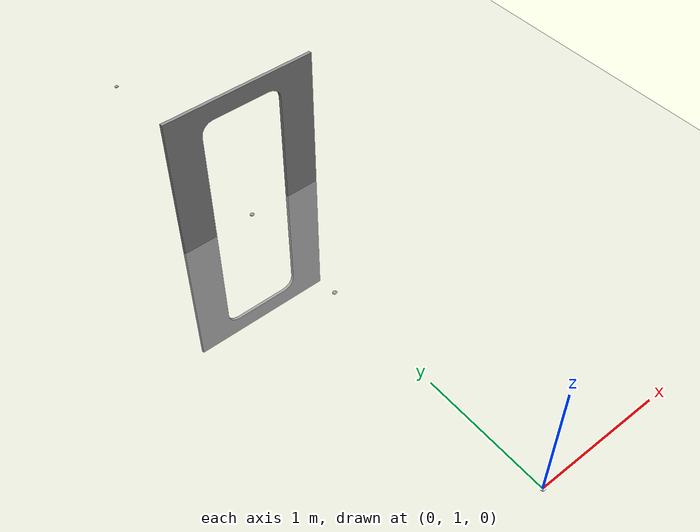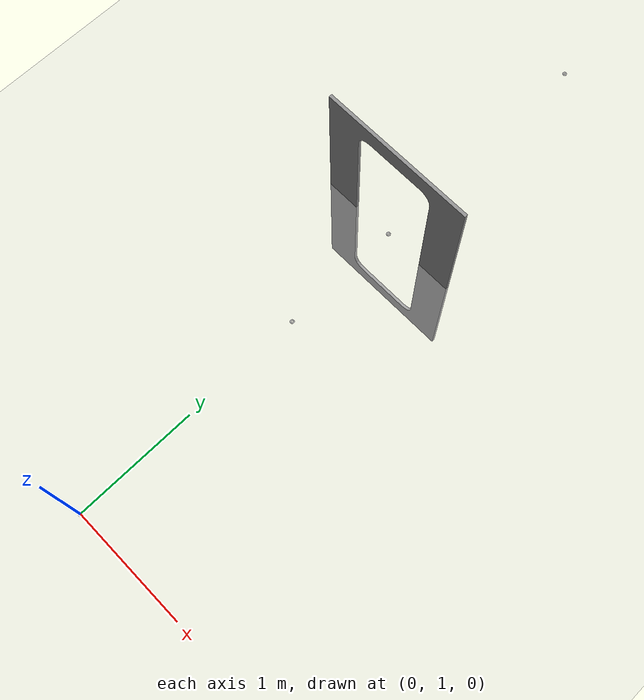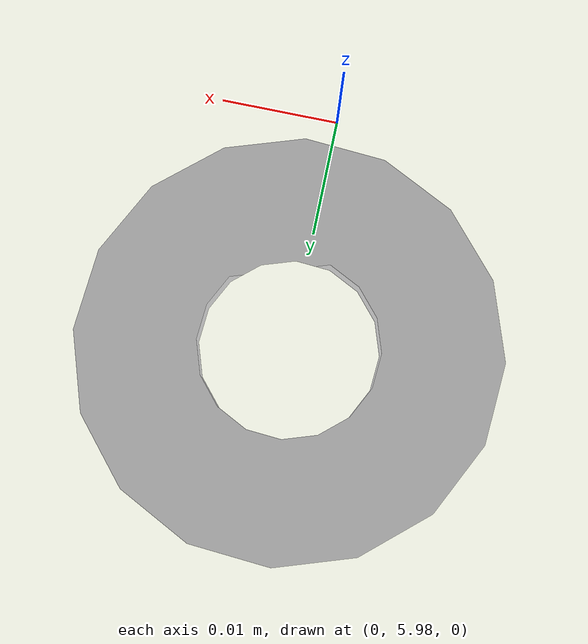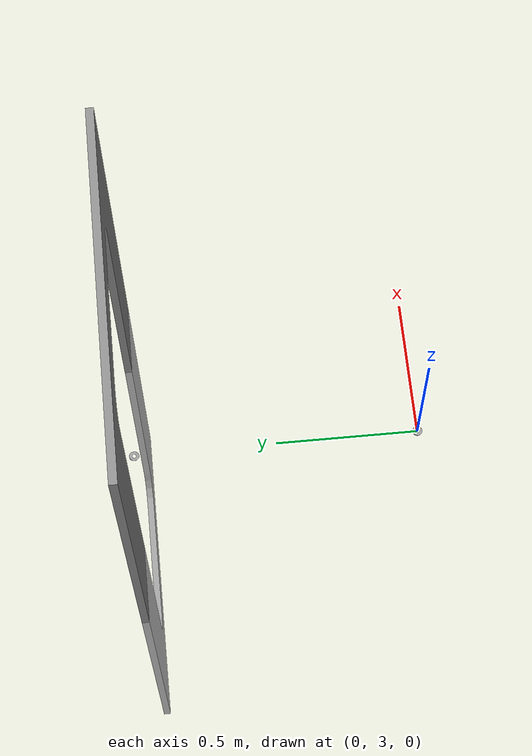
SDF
<sdf version="1.6">
 <world name="default">
  <light name="sun" type="directional">
   <pose>0 0 10 0 -0 0</pose>
   <diffuse>0.8 0.8 0.8 1</diffuse>
   <specular>0.2 0.2 0.2 1</specular>
   <attenuation>
    <range>1000</range>
    <constant>0.9</constant>
    <linear>0.01</linear>
    <quadratic>0.001</quadratic>
   </attenuation>
   <direction>-0.5 0.1 -0.9</direction>
  </light>
  <model name="ground_plane">
   <static>1</static>
   <link name="link">
    <collision name="collision">
     <geometry><plane><normal>0 0 1</normal><size>100 100</size></plane></geometry>
     <surface><friction><ode><mu>100</mu><mu2>50</mu2></ode></friction></surface>
    </collision>
    <visual name="visual">
     <cast_shadows>0</cast_shadows>
     <geometry><plane><normal>0 0 1</normal><size>100 100</size></plane></geometry>
     <material>
      <script><uri>file://media/materials/scripts/gazebo.material</uri><name>Gazebo/Grey</name></script>
     </material>
    </visual>
   </link>
  </model>
  <gravity>0 0 -9.8</gravity>
  <magnetic_field>6e-06 2.3e-05 -4.2e-05</magnetic_field>
  <atmosphere type="adiabatic"/>
  <physics name="default_physics" default="0" type="ode">
   <max_step_size>0.001</max_step_size>
   <real_time_factor>1</real_time_factor>
   <real_time_update_rate>1000</real_time_update_rate>
  </physics>
  <scene><ambient>0.4 0.4 0.4 1</ambient><background>0.7 0.7 0.7 1</background><shadows>1</shadows></scene>
  <spherical_coordinates>
   <surface_model>EARTH_WGS84</surface_model>
   <latitude_deg>0</latitude_deg>
   <longitude_deg>0</longitude_deg>
   <elevation>0</elevation>
   <heading_deg>0</heading_deg>
  </spherical_coordinates>
  <model name="door_4x8">
   <static>1</static>
   <link name="door">
    <collision name="collision">
     <geometry>
      <mesh><uri>model://drc_practice_door_4x8/meshes/4x8ftdoor.dae</uri><scale>1 1 1</scale></mesh>
     </geometry>
    </collision>
    <visual name="visual">
     <geometry>
      <mesh><uri>model://drc_practice_door_4x8/meshes/4x8ftdoor.dae</uri><scale>1 1 1</scale></mesh>
     </geometry>
    </visual>
   </link>
   <pose>0 4 0 0 -0 0</pose>
  </model>
  <model name="washer_33">
   <link name="link">
    <pose>0 0 0.001 0 -0 0</pose>
    <inertial>
     <mass>0.0122</mass>
     <inertia>
      <ixx>1.08758e-06</ixx>
      <ixy>0</ixy>
      <ixz>0</ixz>
      <iyy>1.08758e-06</iyy>
      <iyz>0</iyz>
      <izz>2.16703e-06</izz>
     </inertia>
    </inertial>
    <collision name="collision">
     <geometry><mesh><uri>model://washer/meshes/washer.dae</uri><scale>1 1 1</scale></mesh></geometry>
     <surface>
      <contact>
       <poissons_ratio>0.305</poissons_ratio>
       <elastic_modulus>2e+11</elastic_modulus>
       <ode><kp>100000</kp><kd>100</kd><max_vel>100</max_vel><min_depth>0.001</min_depth></ode>
      </contact>
      <friction>
       <torsional>
        <coefficient>1</coefficient>
        <use_patch_radius>0</use_patch_radius>
        <surface_radius>0.01</surface_radius>
       </torsional>
      </friction>
     </surface>
    </collision>
    <visual name="visual">
     <geometry><mesh><uri>model://washer/meshes/washer.dae</uri><scale>1 1 1</scale></mesh></geometry>
     <material>
      <script><uri>file://media/materials/scripts/gazebo.material</uri><name>Gazebo/Grey</name></script>
     </material>
    </visual>
   </link>
   <pose>0 1 -0.000249 -0.00724 -0.002437 1.2e-05</pose>
  </model>
  <model name="washer_34">
   <link name="link">
    <pose>0 0 0.001 0 -0 0</pose>
    <inertial>
     <mass>0.0122</mass>
     <inertia>
      <ixx>1.08758e-06</ixx>
      <ixy>0</ixy>
      <ixz>0</ixz>
      <iyy>1.08758e-06</iyy>
      <iyz>0</iyz>
      <izz>2.16703e-06</izz>
     </inertia>
    </inertial>
    <collision name="collision">
     <geometry><mesh><uri>model://washer/meshes/washer.dae</uri><scale>1 1 1</scale></mesh></geometry>
     <surface>
      <contact>
       <poissons_ratio>0.305</poissons_ratio>
       <elastic_modulus>2e+11</elastic_modulus>
       <ode><kp>100000</kp><kd>100</kd><max_vel>100</max_vel><min_depth>0.001</min_depth></ode>
      </contact>
      <friction>
       <torsional>
        <coefficient>1</coefficient>
        <use_patch_radius>0</use_patch_radius>
        <surface_radius>0.01</surface_radius>
       </torsional>
      </friction>
     </surface>
    </collision>
    <visual name="visual">
     <geometry><mesh><uri>model://washer/meshes/washer.dae</uri><scale>1 1 1</scale></mesh></geometry>
     <material>
      <script><uri>file://media/materials/scripts/gazebo.material</uri><name>Gazebo/Grey</name></script>
     </material>
    </visual>
   </link>
   <pose>0 3 -0.000187 -0.005431 -0.001828 7e-06</pose>
  </model>
  <model name="washer_35">
   <link name="link">
    <pose>0 0 0.001 0 -0 0</pose>
    <inertial>
     <mass>0.0122</mass>
     <inertia>
      <ixx>1.08758e-06</ixx>
      <ixy>0</ixy>
      <ixz>0</ixz>
      <iyy>1.08758e-06</iyy>
      <iyz>0</iyz>
      <izz>2.16703e-06</izz>
     </inertia>
    </inertial>
    <collision name="collision">
     <geometry><mesh><uri>model://washer/meshes/washer.dae</uri><scale>1 1 1</scale></mesh></geometry>
     <surface>
      <contact>
       <poissons_ratio>0.305</poissons_ratio>
       <elastic_modulus>2e+11</elastic_modulus>
       <ode><kp>100000</kp><kd>100</kd><max_vel>100</max_vel><min_depth>0.001</min_depth></ode>
      </contact>
      <friction>
       <torsional>
        <coefficient>1</coefficient>
        <use_patch_radius>0</use_patch_radius>
        <surface_radius>0.01</surface_radius>
       </torsional>
      </friction>
     </surface>
    </collision>
    <visual name="visual">
     <geometry><mesh><uri>model://washer/meshes/washer.dae</uri><scale>1 1 1</scale></mesh></geometry>
     <material>
      <script><uri>file://media/materials/scripts/gazebo.material</uri><name>Gazebo/Grey</name></script>
     </material>
    </visual>
   </link>
   <pose>0 4 -0.000125 -0.003623 -0.00122 3e-06</pose>
  </model>
  <model name="washer_36">
   <link name="link">
    <pose>0 0 0.001 0 -0 0</pose>
    <inertial>
     <mass>0.0122</mass>
     <inertia>
      <ixx>1.08758e-06</ixx>
      <ixy>0</ixy>
      <ixz>0</ixz>
      <iyy>1.08758e-06</iyy>
      <iyz>0</iyz>
      <izz>2.16703e-06</izz>
     </inertia>
    </inertial>
    <collision name="collision">
     <geometry><mesh><uri>model://washer/meshes/washer.dae</uri><scale>1 1 1</scale></mesh></geometry>
     <surface>
      <contact>
       <poissons_ratio>0.305</poissons_ratio>
       <elastic_modulus>2e+11</elastic_modulus>
       <ode><kp>100000</kp><kd>100</kd><max_vel>100</max_vel><min_depth>0.001</min_depth></ode>
      </contact>
      <friction>
       <torsional>
        <coefficient>1</coefficient>
        <use_patch_radius>0</use_patch_radius>
        <surface_radius>0.01</surface_radius>
       </torsional>
      </friction>
     </surface>
    </collision>
    <visual name="visual">
     <geometry><mesh><uri>model://washer/meshes/washer.dae</uri><scale>1 1 1</scale></mesh></geometry>
     <material>
      <script><uri>file://media/materials/scripts/gazebo.material</uri><name>Gazebo/Grey</name></script>
     </material>
    </visual>
   </link>
   <pose>0 6 -6.2e-05 -0.001818 -0.000613 1e-06</pose>
  </model>
 </world>
</sdf>
